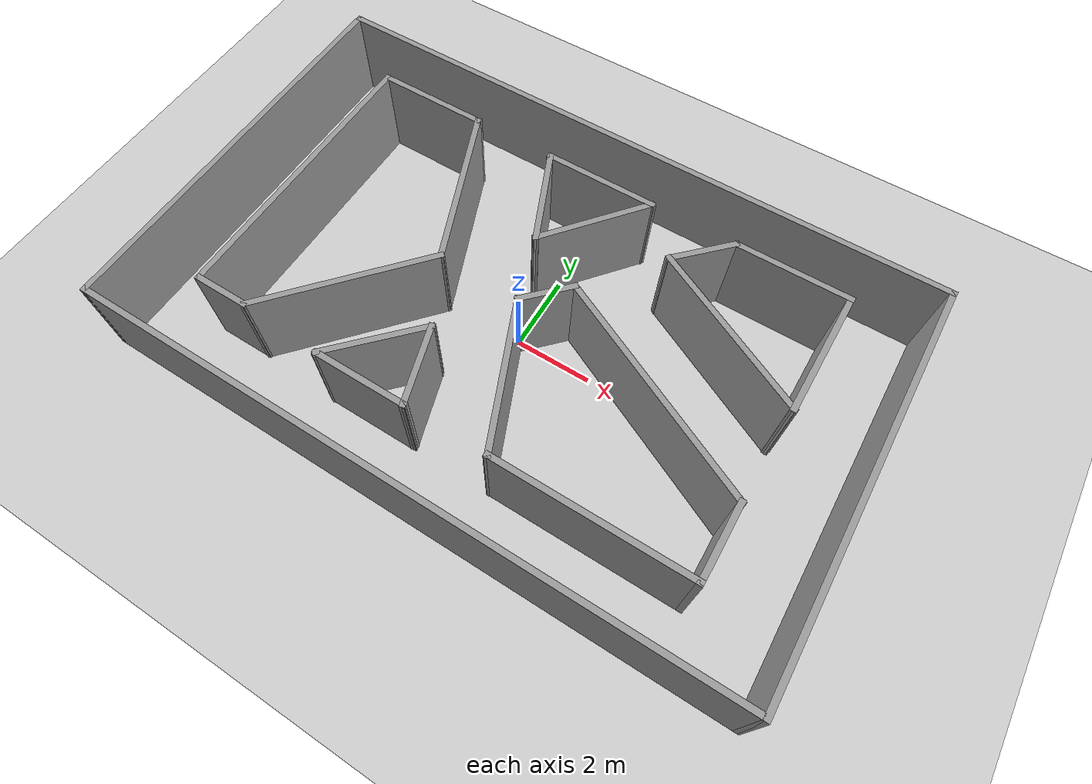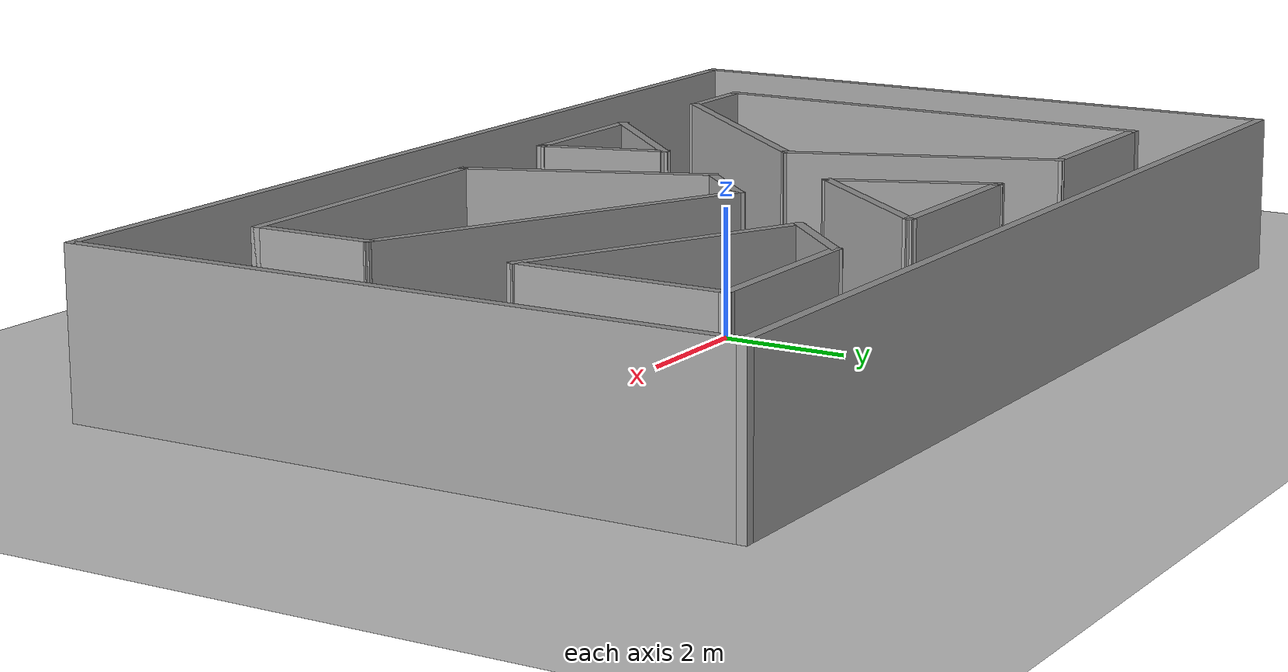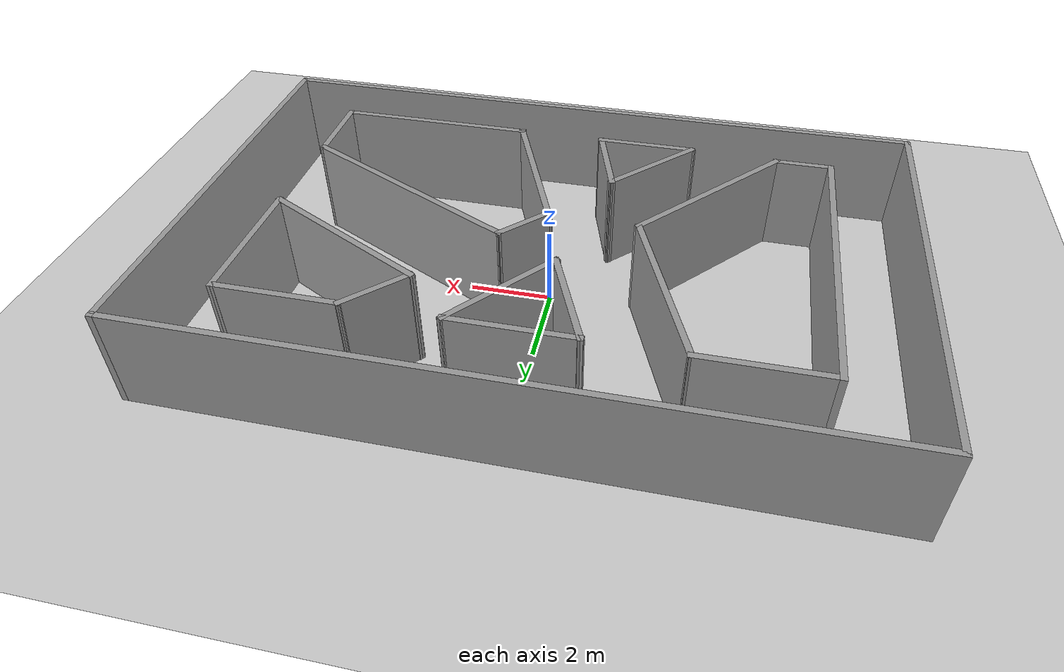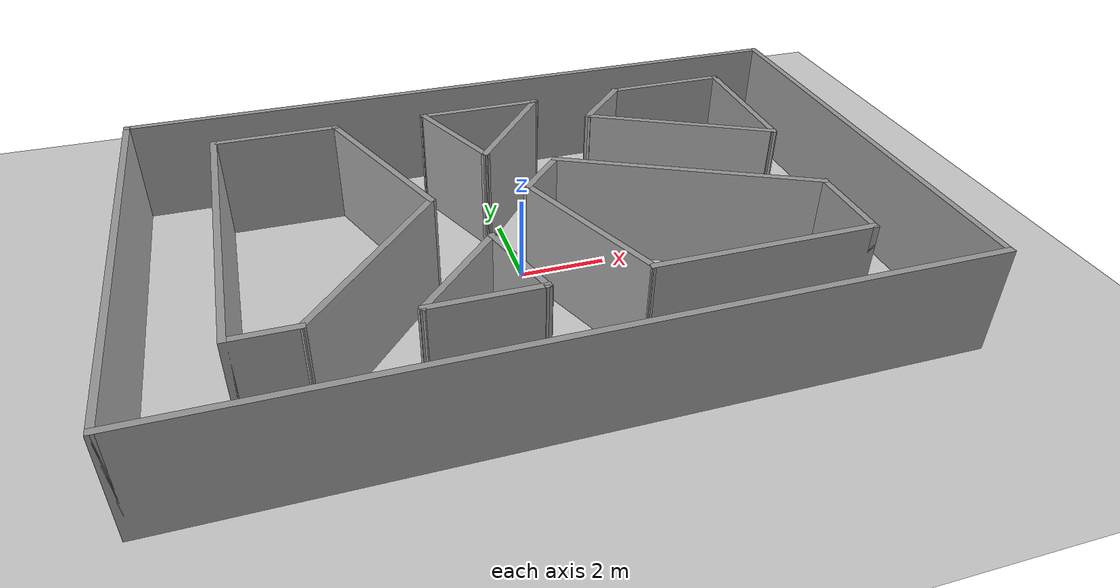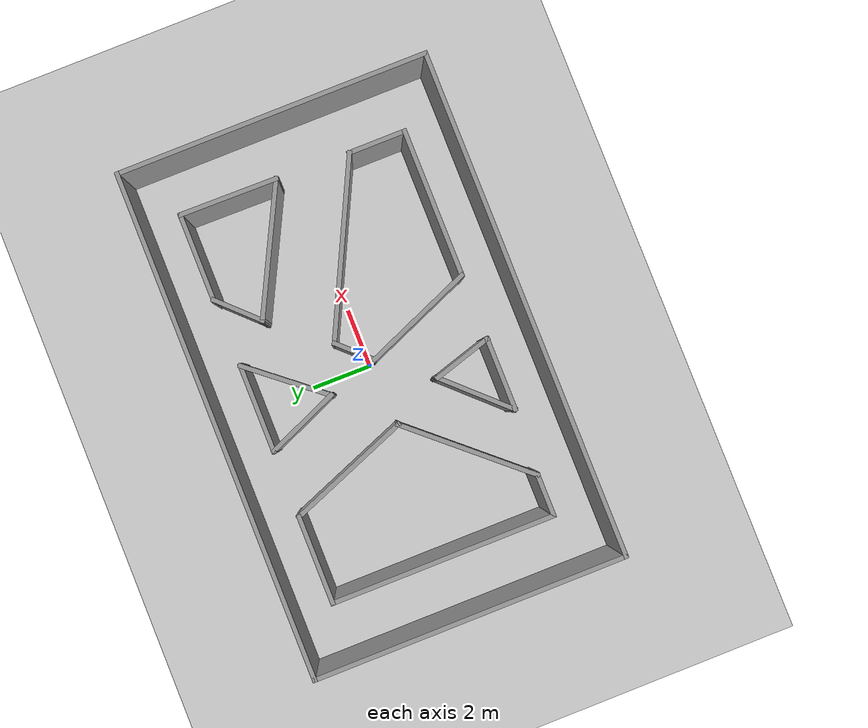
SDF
<sdf version="1.6">
 <world name="default">
  <light name="sun" type="directional">
   <pose>0 0 10 0 -0 0</pose>
   <diffuse>0.8 0.8 0.8 1</diffuse>
   <specular>0.2 0.2 0.2 1</specular>
   <attenuation>
    <range>1000</range>
    <constant>0.9</constant>
    <linear>0.01</linear>
    <quadratic>0.001</quadratic>
   </attenuation>
   <direction>-0.5 0.1 -0.9</direction>
  </light>
  <model name="ground_plane">
   <static>1</static>
   <link name="link">
    <collision name="collision">
     <geometry><plane><normal>0 0 1</normal><size>100 100</size></plane></geometry>
     <surface>
      <contact><collide_bitmask>65535</collide_bitmask></contact>
      <friction><ode><mu>100</mu><mu2>50</mu2></ode></friction>
     </surface>
    </collision>
    <visual name="visual">
     <cast_shadows>0</cast_shadows>
     <geometry><plane><normal>0 0 1</normal><size>100 100</size></plane></geometry>
     <material>
      <script><uri>file://media/materials/scripts/gazebo.material</uri><name>Gazebo/Grey</name></script>
     </material>
    </visual>
   </link>
  </model>
  <gravity>0 0 -9.8</gravity>
  <magnetic_field>6e-06 2.3e-05 -4.2e-05</magnetic_field>
  <atmosphere type="adiabatic"/>
  <physics name="default_physics" default="0" type="ode">
   <max_step_size>0.001</max_step_size>
   <real_time_factor>1</real_time_factor>
   <real_time_update_rate>1000</real_time_update_rate>
  </physics>
  <scene><ambient>0.4 0.4 0.4 1</ambient><background>0.7 0.7 0.7 1</background><shadows>1</shadows></scene>
  <audio><device>default</device></audio>
  <spherical_coordinates>
   <surface_model>EARTH_WGS84</surface_model>
   <latitude_deg>0</latitude_deg>
   <longitude_deg>0</longitude_deg>
   <elevation>0</elevation>
   <heading_deg>0</heading_deg>
  </spherical_coordinates>
  <model name="Untitled">
   <link name="Wall_0">
    <collision name="Wall_0_Collision">
     <geometry><box><size>3 0.15 2.5</size></box></geometry>
     <pose>0 0 1.25 0 -0 0</pose>
    </collision>
    <visual name="Wall_0_Visual">
     <pose>0 0 1.25 0 -0 0</pose>
     <geometry><box><size>3 0.15 2.5</size></box></geometry>
     <material>
      <script><uri>file://media/materials/scripts/gazebo.material</uri><name>Gazebo/Grey</name></script>
      <ambient>1 1 1 1</ambient>
     </material>
     <meta><layer>0</layer></meta>
    </visual>
    <pose>-5.01155 3.78884 0 0 -0 0</pose>
   </link>
   <link name="Wall_10">
    <collision name="Wall_10_Collision">
     <geometry><box><size>17 0.15 2.5</size></box></geometry>
     <pose>0 0 1.25 0 -0 0</pose>
    </collision>
    <visual name="Wall_10_Visual">
     <pose>0 0 1.25 0 -0 0</pose>
     <geometry><box><size>17 0.15 2.5</size></box></geometry>
     <material>
      <script><uri>file://media/materials/scripts/gazebo.material</uri><name>Gazebo/Grey</name></script>
      <ambient>1 1 1 1</ambient>
     </material>
     <meta><layer>0</layer></meta>
    </visual>
    <pose>-0 -5.175 0 0 -0 0</pose>
   </link>
   <link name="Wall_11">
    <collision name="Wall_11_Collision">
     <geometry><box><size>10.5 0.15 2.5</size></box></geometry>
     <pose>0 0 1.25 0 -0 0</pose>
    </collision>
    <visual name="Wall_11_Visual">
     <pose>0 0 1.25 0 -0 0</pose>
     <geometry><box><size>10.5 0.15 2.5</size></box></geometry>
     <material>
      <script><uri>file://media/materials/scripts/gazebo.material</uri><name>Gazebo/Grey</name></script>
      <ambient>1 1 1 1</ambient>
     </material>
     <meta><layer>0</layer></meta>
    </visual>
    <pose>8.425 0 0 0 -0 1.5708</pose>
   </link>
   <link name="Wall_12">
    <collision name="Wall_12_Collision">
     <geometry><box><size>17 0.15 2.5</size></box></geometry>
     <pose>0 0 1.25 0 -0 0</pose>
    </collision>
    <visual name="Wall_12_Visual">
     <pose>0 0 1.25 0 -0 0</pose>
     <geometry><box><size>17 0.15 2.5</size></box></geometry>
     <material>
      <script><uri>file://media/materials/scripts/gazebo.material</uri><name>Gazebo/Grey</name></script>
      <ambient>1 1 1 1</ambient>
     </material>
     <meta><layer>0</layer></meta>
    </visual>
    <pose>-0 5.175 0 0 -0 3.14159</pose>
   </link>
   <link name="Wall_13">
    <collision name="Wall_13_Collision">
     <geometry><box><size>10.5 0.15 2.5</size></box></geometry>
     <pose>0 0 1.25 0 -0 0</pose>
    </collision>
    <visual name="Wall_13_Visual">
     <pose>0 0 1.25 0 -0 0</pose>
     <geometry><box><size>10.5 0.15 2.5</size></box></geometry>
     <material>
      <script><uri>file://media/materials/scripts/gazebo.material</uri><name>Gazebo/Grey</name></script>
      <ambient>1 1 1 1</ambient>
     </material>
     <meta><layer>0</layer></meta>
    </visual>
    <pose>-8.425 0 0 0 -0 -1.5708</pose>
   </link>
   <link name="Wall_15">
    <collision name="Wall_15_Collision">
     <geometry><box><size>3 0.15 2.5</size></box></geometry>
     <pose>0 0 1.25 0 -0 0</pose>
    </collision>
    <visual name="Wall_15_Visual">
     <pose>0 0 1.25 0 -0 0</pose>
     <geometry><box><size>3 0.15 2.5</size></box></geometry>
     <material>
      <script><uri>file://media/materials/scripts/gazebo.material</uri><name>Gazebo/Grey</name></script>
      <ambient>1 1 1 1</ambient>
     </material>
     <meta><layer>0</layer></meta>
    </visual>
    <pose>0.013818 3.7743 0 0 -0 0</pose>
   </link>
   <link name="Wall_16">
    <collision name="Wall_16_Collision">
     <geometry><box><size>3.11651 0.15 2.5</size></box></geometry>
     <pose>0 0 1.25 0 -0 0</pose>
    </collision>
    <visual name="Wall_16_Visual">
     <pose>0 0 1.25 0 -0 0</pose>
     <geometry><box><size>3.11651 0.15 2.5</size></box></geometry>
     <material>
      <script><uri>file://media/materials/scripts/gazebo.material</uri><name>Gazebo/Grey</name></script>
      <ambient>1 1 1 1</ambient>
     </material>
     <meta><layer>0</layer></meta>
    </visual>
    <pose>0.4983 2.62737 0 0 -0 -2.25763</pose>
   </link>
   <link name="Wall_17">
    <collision name="Wall_17_Collision">
     <geometry><box><size>2.64013 0.15 2.5</size></box></geometry>
     <pose>0 0 1.25 0 -0 0</pose>
    </collision>
    <visual name="Wall_17_Visual">
     <pose>0 0 1.25 0 -0 0</pose>
     <geometry><box><size>2.64013 0.15 2.5</size></box></geometry>
     <material>
      <script><uri>file://media/materials/scripts/gazebo.material</uri><name>Gazebo/Grey</name></script>
      <ambient>1 1 1 1</ambient>
     </material>
     <meta><layer>0</layer></meta>
    </visual>
    <pose>-0.9267 2.62737 0 0 -0 1.97047</pose>
   </link>
   <link name="Wall_2">
    <collision name="Wall_2_Collision">
     <geometry><box><size>7.5 0.15 2.5</size></box></geometry>
     <pose>0 0 1.25 0 -0 0</pose>
    </collision>
    <visual name="Wall_2_Visual">
     <pose>0 0 1.25 0 -0 0</pose>
     <geometry><box><size>7.5 0.15 2.5</size></box></geometry>
     <material>
      <script><uri>file://media/materials/scripts/gazebo.material</uri><name>Gazebo/Grey</name></script>
      <ambient>1 1 1 1</ambient>
     </material>
     <meta><layer>0</layer></meta>
    </visual>
    <pose>-6.43655 0.113841 0 0 -0 -1.5708</pose>
   </link>
   <link name="Wall_20">
    <collision name="Wall_20_Collision">
     <geometry><box><size>2.5 0.15 2.5</size></box></geometry>
     <pose>0 0 1.25 0 -0 0</pose>
    </collision>
    <visual name="Wall_20_Visual">
     <pose>0 0 1.25 0 -0 0</pose>
     <geometry><box><size>2.5 0.15 2.5</size></box></geometry>
     <material>
      <script><uri>file://media/materials/scripts/gazebo.material</uri><name>Gazebo/Grey</name></script>
      <ambient>1 1 1 1</ambient>
     </material>
     <meta><layer>0</layer></meta>
    </visual>
    <pose>-1.77231 -3.66743 0 0 -0 0</pose>
   </link>
   <link name="Wall_21">
    <collision name="Wall_21_Collision">
     <geometry><box><size>2.10931 0.15 2.5</size></box></geometry>
     <pose>0 0 1.25 0 -0 0</pose>
    </collision>
    <visual name="Wall_21_Visual">
     <pose>0 0 1.25 0 -0 0</pose>
     <geometry><box><size>2.10931 0.15 2.5</size></box></geometry>
     <material>
      <script><uri>file://media/materials/scripts/gazebo.material</uri><name>Gazebo/Grey</name></script>
      <ambient>1 1 1 1</ambient>
     </material>
     <meta><layer>0</layer></meta>
    </visual>
    <pose>-0.879722 -2.72936 0 0 -0 1.86323</pose>
   </link>
   <link name="Wall_22">
    <collision name="Wall_22_Collision">
     <geometry><box><size>2.73973 0.15 2.5</size></box></geometry>
     <pose>0 0 1.25 0 -0 0</pose>
    </collision>
    <visual name="Wall_22_Visual">
     <pose>0 0 1.25 0 -0 0</pose>
     <geometry><box><size>2.73973 0.15 2.5</size></box></geometry>
     <material>
      <script><uri>file://media/materials/scripts/gazebo.material</uri><name>Gazebo/Grey</name></script>
      <ambient>1 1 1 1</ambient>
     </material>
     <meta><layer>0</layer></meta>
    </visual>
    <pose>-2.05472 -2.72936 0 0 -0 -2.33135</pose>
   </link>
   <link name="Wall_24">
    <collision name="Wall_24_Collision">
     <geometry><box><size>5 0.15 2.5</size></box></geometry>
     <pose>0 0 1.25 0 -0 0</pose>
    </collision>
    <visual name="Wall_24_Visual">
     <pose>0 0 1.25 0 -0 0</pose>
     <geometry><box><size>5 0.15 2.5</size></box></geometry>
     <material>
      <script><uri>file://media/materials/scripts/gazebo.material</uri><name>Gazebo/Grey</name></script>
      <ambient>1 1 1 1</ambient>
     </material>
     <meta><layer>0</layer></meta>
    </visual>
    <pose>3.95767 -3.66743 0 0 -0 0</pose>
   </link>
   <link name="Wall_25">
    <collision name="Wall_25_Collision">
     <geometry><box><size>2 0.15 2.5</size></box></geometry>
     <pose>0 0 1.25 0 -0 0</pose>
    </collision>
    <visual name="Wall_25_Visual">
     <pose>0 0 1.25 0 -0 0</pose>
     <geometry><box><size>2 0.15 2.5</size></box></geometry>
     <material>
      <script><uri>file://media/materials/scripts/gazebo.material</uri><name>Gazebo/Grey</name></script>
      <ambient>1 1 1 1</ambient>
     </material>
     <meta><layer>0</layer></meta>
    </visual>
    <pose>6.38267 -2.74243 0 0 -0 1.5708</pose>
   </link>
   <link name="Wall_26">
    <collision name="Wall_26_Collision">
     <geometry><box><size>6.11696 0.15 2.5</size></box></geometry>
     <pose>0 0 1.25 0 -0 0</pose>
    </collision>
    <visual name="Wall_26_Visual">
     <pose>0 0 1.25 0 -0 0</pose>
     <geometry><box><size>6.11696 0.15 2.5</size></box></geometry>
     <material>
      <script><uri>file://media/materials/scripts/gazebo.material</uri><name>Gazebo/Grey</name></script>
      <ambient>1 1 1 1</ambient>
     </material>
     <meta><layer>0</layer></meta>
    </visual>
    <pose>3.70183 -0.508127 0 0 -0 2.68727</pose>
   </link>
   <link name="Wall_27">
    <collision name="Wall_27_Collision">
     <geometry><box><size>1.50113 0.15 2.5</size></box></geometry>
     <pose>0 0 1.25 0 -0 0</pose>
    </collision>
    <visual name="Wall_27_Visual">
     <pose>0 0 1.25 0 -0 0</pose>
     <geometry><box><size>1.50113 0.15 2.5</size></box></geometry>
     <material>
      <script><uri>file://media/materials/scripts/gazebo.material</uri><name>Gazebo/Grey</name></script>
      <ambient>1 1 1 1</ambient>
     </material>
     <meta><layer>0</layer></meta>
    </visual>
    <pose>0.554807 0.312245 0 0 -0 -2.33239</pose>
   </link>
   <link name="Wall_28">
    <collision name="Wall_28_Collision">
     <geometry><box><size>3.92764 0.15 2.5</size></box></geometry>
     <pose>0 0 1.25 0 -0 0</pose>
    </collision>
    <visual name="Wall_28_Visual">
     <pose>0 0 1.25 0 -0 0</pose>
     <geometry><box><size>3.92764 0.15 2.5</size></box></geometry>
     <material>
      <script><uri>file://media/materials/scripts/gazebo.material</uri><name>Gazebo/Grey</name></script>
      <ambient>1 1 1 1</ambient>
     </material>
     <meta><layer>0</layer></meta>
    </visual>
    <pose>0.810644 -1.92206 0 0 -0 -1.17855</pose>
   </link>
   <link name="Wall_3">
    <collision name="Wall_3_Collision">
     <geometry><box><size>1.5 0.15 2.5</size></box></geometry>
     <pose>0 0 1.25 0 -0 0</pose>
    </collision>
    <visual name="Wall_3_Visual">
     <pose>0 0 1.25 0 -0 0</pose>
     <geometry><box><size>1.5 0.15 2.5</size></box></geometry>
     <material>
      <script><uri>file://media/materials/scripts/gazebo.material</uri><name>Gazebo/Grey</name></script>
      <ambient>1 1 1 1</ambient>
     </material>
     <meta><layer>0</layer></meta>
    </visual>
    <pose>-5.76155 -3.56116 0 0 -0 0</pose>
   </link>
   <link name="Wall_30">
    <collision name="Wall_30_Collision">
     <geometry><box><size>3 0.15 2.5</size></box></geometry>
     <pose>0 0 1.25 0 -0 0</pose>
    </collision>
    <visual name="Wall_30_Visual">
     <pose>0 0 1.25 0 -0 0</pose>
     <geometry><box><size>3 0.15 2.5</size></box></geometry>
     <material>
      <script><uri>file://media/materials/scripts/gazebo.material</uri><name>Gazebo/Grey</name></script>
      <ambient>1 1 1 1</ambient>
     </material>
     <meta><layer>0</layer></meta>
    </visual>
    <pose>5.08254 3.80378 0 0 -0 3.14159</pose>
   </link>
   <link name="Wall_31">
    <collision name="Wall_31_Collision">
     <geometry><box><size>1.80361 0.15 2.5</size></box></geometry>
     <pose>0 0 1.25 0 -0 0</pose>
    </collision>
    <visual name="Wall_31_Visual">
     <pose>0 0 1.25 0 -0 0</pose>
     <geometry><box><size>1.80361 0.15 2.5</size></box></geometry>
     <material>
      <script><uri>file://media/materials/scripts/gazebo.material</uri><name>Gazebo/Grey</name></script>
      <ambient>1 1 1 1</ambient>
     </material>
     <meta><layer>0</layer></meta>
    </visual>
    <pose>3.07889 3.21315 0 0 -0 -2.34595</pose>
   </link>
   <link name="Wall_32">
    <collision name="Wall_32_Collision">
     <geometry><box><size>4.60026 0.15 2.5</size></box></geometry>
     <pose>0 0 1.25 0 -0 0</pose>
    </collision>
    <visual name="Wall_32_Visual">
     <pose>0 0 1.25 0 -0 0</pose>
     <geometry><box><size>4.60026 0.15 2.5</size></box></geometry>
     <material>
      <script><uri>file://media/materials/scripts/gazebo.material</uri><name>Gazebo/Grey</name></script>
      <ambient>1 1 1 1</ambient>
     </material>
     <meta><layer>0</layer></meta>
    </visual>
    <pose>4.4852 1.61696 0 0 -0 -0.468907</pose>
   </link>
   <link name="Wall_33">
    <collision name="Wall_33_Collision">
     <geometry><box><size>3.34259 0.15 2.5</size></box></geometry>
     <pose>0 0 1.25 0 -0 0</pose>
    </collision>
    <visual name="Wall_33_Visual">
     <pose>0 0 1.25 0 -0 0</pose>
     <geometry><box><size>3.34259 0.15 2.5</size></box></geometry>
     <material>
      <script><uri>file://media/materials/scripts/gazebo.material</uri><name>Gazebo/Grey</name></script>
      <ambient>1 1 1 1</ambient>
     </material>
     <meta><layer>0</layer></meta>
    </visual>
    <pose>6.48885 2.20759 0 0 -0 1.55909</pose>
   </link>
   <link name="Wall_7">
    <collision name="Wall_7_Collision">
     <geometry><box><size>4.73518 0.15 2.5</size></box></geometry>
     <pose>0 0 1.25 0 -0 0</pose>
    </collision>
    <visual name="Wall_7_Visual">
     <pose>0 0 1.25 0 -0 0</pose>
     <geometry><box><size>4.73518 0.15 2.5</size></box></geometry>
     <material>
      <script><uri>file://media/materials/scripts/gazebo.material</uri><name>Gazebo/Grey</name></script>
      <ambient>1 1 1 1</ambient>
     </material>
     <meta><layer>0</layer></meta>
    </visual>
    <pose>-3.57066 -1.84126 0 0 -0 0.848361</pose>
   </link>
   <link name="Wall_8">
    <collision name="Wall_8_Collision">
     <geometry><box><size>4.34954 0.15 2.5</size></box></geometry>
     <pose>0 0 1.25 0 -0 0</pose>
    </collision>
    <visual name="Wall_8_Visual">
     <pose>0 0 1.25 0 -0 0</pose>
     <geometry><box><size>4.34954 0.15 2.5</size></box></geometry>
     <material>
      <script><uri>file://media/materials/scripts/gazebo.material</uri><name>Gazebo/Grey</name></script>
      <ambient>1 1 1 1</ambient>
     </material>
     <meta><layer>0</layer></meta>
    </visual>
    <pose>-2.82066 1.83373 0 0 -0 1.94416</pose>
   </link>
   <static>1</static>
  </model>
  <light name="user_directional_light_0" type="directional">
   <pose>-32.5083 36.8535 1 0 -0 0</pose>
   <diffuse>0.5 0.5 0.5 1</diffuse>
   <specular>0.1 0.1 0.1 1</specular>
   <direction>0.1 0.1 -0.9</direction>
   <attenuation>
    <range>20</range>
    <constant>0.5</constant>
    <linear>0.01</linear>
    <quadratic>0.001</quadratic>
   </attenuation>
  </light>
 </world>
</sdf>
